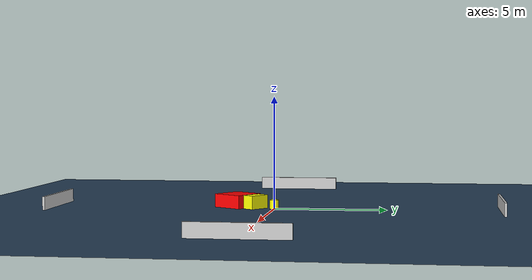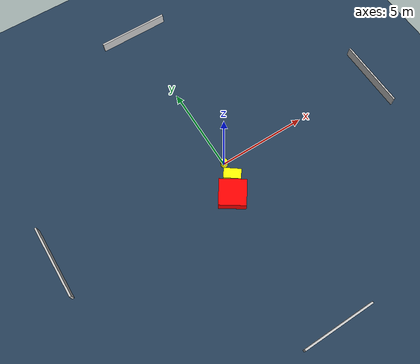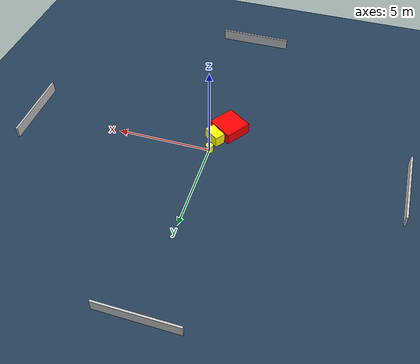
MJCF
<?xml version="1.0" ?>
<mujoco model="generated_environment">
  <option timestep="0.01" integrator="RK4" cone="elliptic"/>
  <default>
    <geom density="1"/>
  </default>
  <asset>
    <texture builtin="gradient" height="3072" name="skybox" rgb1="0.3 0.5 0.7" rgb2="0 0 0" type="skybox" width="512"/>
    <texture builtin="checker" height="300" name="groundplane" rgb1="0.2 0.3 0.4" rgb2="0.1 0.2 0.3" type="2d" width="300"/>
    <material name="groundplane" reflectance="0.2" texrepeat="5 5" texture="groundplane"/>
  </asset>
  <worldbody>
    <light dir="0 0 -1" directional="true" pos="0 0 1.5"/>
    <geom condim="3" friction="0.5 0.005 0.001" material="groundplane" name="floor" pos="0 0 0" size="0 0 0.05" type="plane"/>
    <body name="walls">
      <geom name="wall_1" condim="4" pos="-10.0 0.0 0.3" rgba="0.800000011920929 0.800000011920929 0.800000011920929 1.0" size="0.05 2.0 0.3" type="box"/>
      <geom name="wall_2" condim="4" pos="10.0 0.0 0.3" rgba="0.800000011920929 0.800000011920929 0.800000011920929 1.0" size="0.05 2.0 0.3" type="box"/>
      <geom name="wall_3" condim="4" pos="0.0 -10.0 0.3" rgba="0.800000011920929 0.800000011920929 0.800000011920929 1.0" size="2.0 0.05 0.3" type="box"/>
      <geom name="wall_4" condim="4" pos="0.0 10.0 0.3" rgba="0.800000011920929 0.800000011920929 0.800000011920929 1.0" size="2.0 0.05 0.3" type="box"/>
    </body>
    <body name="robot">
      <joint name="joint_x" type="slide" pos="0 0 0" axis="1 0 0"/>
      <joint name="joint_y" type="slide" pos="0 0 0" axis="0 1 0"/>
      <geom name="robot" type="cylinder" pos="0.0 0.0 0.2" size="0.2 0.2 0.0" mass="5.0" friction="1.0 0.005 0.0001" condim="4" rgba="1.0 1.0 0.0 1.0"/>
    </body>
    <body name="obstacle_1_movable">
      <geom name="obstacle_1_movable" condim="4" pos="-0.03545569213202013 -0.8539556439127534 0.3" euler="0 0 323.0196387640317" friction="0.0 0.005 0.001" rgba="1.0 1.0 0.0 1.0" size="0.47346650544607466 0.28072686796581087 0.3" type="box" mass="0.1"/>
      <joint type="free"/>
    </body>
    <body name="obstacle_2_static">
      <geom name="obstacle_2_static" condim="4" pos="-0.5916805549130977 -1.7402523822006717 0.3" euler="0 0 145.8532304125376" friction="0.0 0.005 0.001" rgba="1.0 0.0 0.0 1.0" size="0.7370646437723116 0.7256337202394905 0.3" type="box"/>
    </body>
  </worldbody>
  <actuator>
    <motor name="actuator_x" joint="joint_x" gear="1" ctrlrange="-1 1"/>
    <motor name="actuator_y" joint="joint_y" gear="1" ctrlrange="-1 1"/>
  </actuator>
</mujoco>
